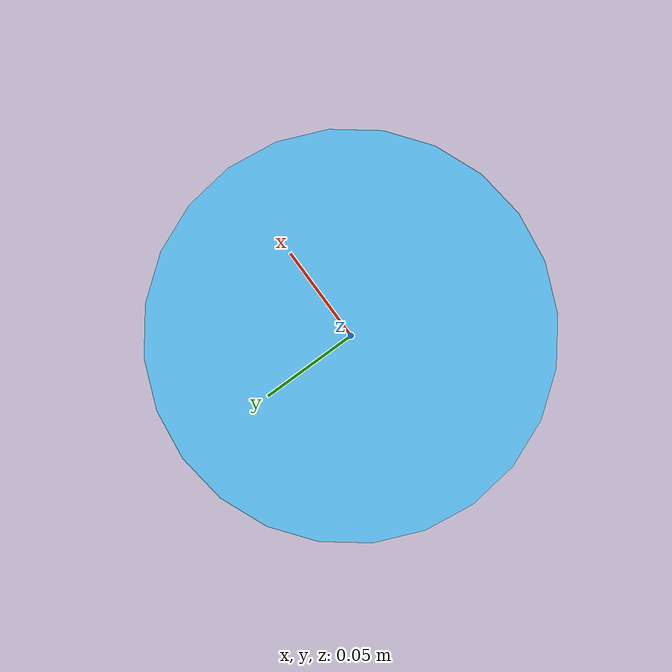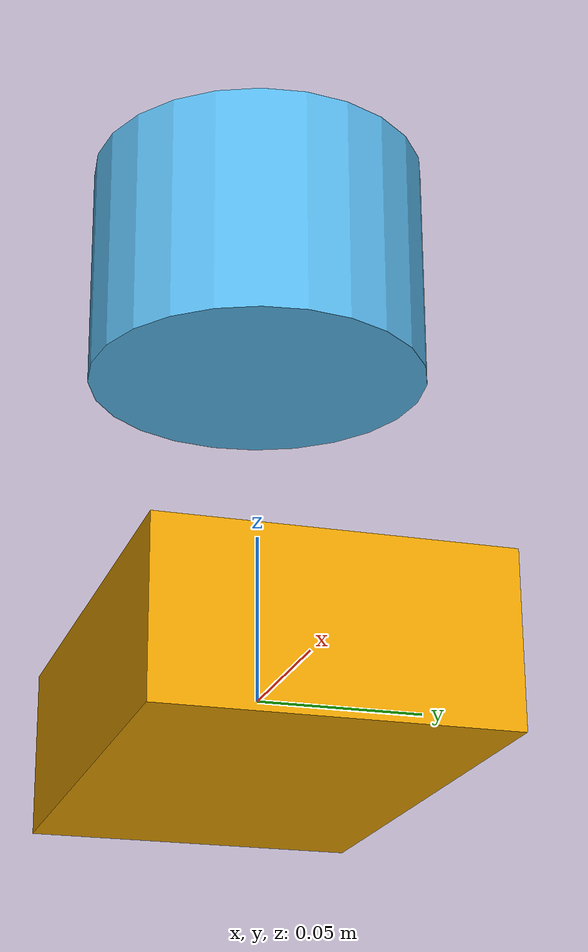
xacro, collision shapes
<?xml version="1.0"?>
<robot xmlns:xacro="http://www.ros.org/wiki/xacro" name="demo">
  <!-- define some parameters -->
  <xacro:arg name="gpu" default="false"/>
  <xacro:property name="gpu" value="$(arg gpu)" />

  <xacro:arg name="organize_cloud" default="false"/>
  <xacro:property name="organize_cloud" value="$(arg organize_cloud)" />

  <!-- Base Footprint -->

  <!-- Base Link -->
  <!-- link(or say an obejct) -->
  <link name="base_link" >
    <pose xyz="0 0 0.5" rpy="0 0 0" />
    <visual>
      <geometry>
        <box size="0.15 0.1 0.05" />
      </geometry>
    </visual>
    <collision>
      <geometry>
        <box size="0.15 0.1 0.05" />
      </geometry>
    </collision>
    <inertial>
      <origin xyz="0 0 0"/>
      <mass value="10"/>
      <inertia ixx="3.0" ixy="0.0" ixz="0.0"
               iyy="3.0" iyz="0.0"
               izz="3.0" />
    </inertial>
    <gazebo reference="base_footprint">
    <gravity>0</gravity>
    </gazebo>
    <selfCollide>false</selfCollide>
  </link>

  <gazebo reference="base_footprint">
    <turnGravityOff>true</turnGravityOff>
  </gazebo>
  <!-- plugin, a model plugin as it is on a robot model -->
  <gazebo>
    <plugin name="car_steer_plugin" filename="libcar_steer_plugin.so"/>
  </gazebo>

  <!-- a way to add another model in current model -->
  <xacro:include filename="$(find virtual_dataset)/urdf/Ouster-64.urdf.xacro"/>
  <xacro:Ouster-64 parent="base_link" name="ouster" topic="/ouster_points" organize_cloud="${organize_cloud}" hz="10" samples="2048" gpu="${gpu}">
    <origin xyz="0 0 0.1" rpy="0 0 0" />
  </xacro:Ouster-64>

</robot>

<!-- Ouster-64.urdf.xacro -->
<robot xmlns:xacro="http://www.ros.org/wiki/xacro" name="Ouster-64">
  <xacro:property name="M_PI" value="3.1415926535897931" />
  <xacro:macro name="Ouster-64" params="*origin parent:=base_link name:=ouster topic:=/ouster_points topic_imu:=/ouster_imu organize_cloud:=false hz:=10 lasers:=64 samples:=2048 collision_range:=0.3 min_range:=0.9 max_range:=75.0 noise:=0.008 min_angle:=-${M_PI} max_angle:=${M_PI} gpu:=false">

    <joint name="${name}_base_mount_joint" type="fixed">
      <xacro:insert_block name="origin" />
      <parent link="${parent}"/>
      <child link="${name}_base_link"/>
    </joint>

    <link name="${name}_base_link">
      <inertial>
        <mass value="0.83"/>
        <origin xyz="0 0 0.03585"/>
        <inertia ixx="${(0.83 * (3.0*0.0516*0.0516 + 0.0717*0.0717)) / 12.0}" ixy="0" ixz="0"
          iyy="${(0.83 * (3.0*0.0516*0.0516 + 0.0717*0.0717)) / 12.0}" iyz="0"
          izz="${0.5 * 0.83 * (0.0516*0.0516)}"/>
      </inertial>
      <visual>
        <geometry>
          <mesh filename="package://virtual_dataset/meshes/Ouster64_base_1.dae" />
        </geometry>
      </visual>
      <visual>
        <geometry>
          <mesh filename="package://virtual_dataset/meshes/Ouster64_base_2.dae" />
        </geometry>
      </visual>
      <collision>
        <origin rpy="0 0 0" xyz="0 0 0.03585"/>
        <geometry>
          <cylinder radius="0.0516" length="0.0717"/>
        </geometry>
      </collision>
      <selfCollide>false</selfCollide>
    </link>

    <joint name="${name}_base_scan_joint" type="fixed" >
      <origin xyz="0 0 0.0377" rpy="0 0 0" />
      <parent link="${name}_base_link" />
      <child link="${name}"/>
    </joint>

    <link name="${name}">
      <inertial>
        <mass value="0.01"/>
        <origin xyz="0 0 0"/>
        <inertia ixx="1e-7" ixy="0" ixz="0" iyy="1e-7" iyz="0" izz="1e-7"/>
      </inertial>
      <visual>
        <origin xyz="0 0 -0.0377" />
        <geometry>
          <mesh filename="package://virtual_dataset/meshes/Ouster64_scan.dae" />
        </geometry>
      </visual>
      <collision>
        <geometry>
          <sphere radius="0"/>
        </geometry>
      </collision>
      <selfCollide>false</selfCollide>
    </link>

    <!-- Gazebo requires the ouster_gazebo_plugins package -->
    <gazebo reference="${name}">
      <xacro:if value="${gpu}">
        <sensor type="gpu_ray" name="${name}-Ouster64">
          <pose>0 0 0 0 0 0</pose>
          <visualize>false</visualize>
          <update_rate>${hz}</update_rate>
          <ray>
            <scan>
              <horizontal>
                <samples>${samples}</samples>
                <resolution>1</resolution>
                <min_angle>${min_angle}</min_angle>
                <max_angle>${max_angle}</max_angle>
              </horizontal>
              <vertical>
                <samples>${lasers}</samples>
                <resolution>1</resolution>
                <min_angle>-${22.5*M_PI/180.0}</min_angle>
                <max_angle> ${22.5*M_PI/180.0}</max_angle>
              </vertical>
            </scan>
            <range>
              <min>${collision_range}</min>
              <max>${max_range+1}</max>
              <resolution>0.001</resolution>
            </range>
            <noise>
              <type>gaussian</type>
              <mean>0.0</mean>
              <stddev>0.0</stddev>
            </noise>
          </ray>
          <plugin name="gazebo_ros_laser_controller" filename="libgazebo_ros_ouster_gpu_laser.so">
            <topicName>${topic}</topicName>
            <frameName>temp</frameName>
            <organize_cloud>${organize_cloud}</organize_cloud>
            <min_range>${min_range}</min_range>
            <max_range>${max_range}</max_range>
            <gaussianNoise>${noise}</gaussianNoise>
          </plugin>
        </sensor>
      </xacro:if>
      <xacro:unless value="${gpu}">
        <sensor type="ray" name="${name}-Ouster64">
          <pose>0 0 0 0 0 0</pose>
          <visualize>false</visualize>
          <update_rate>${hz}</update_rate>
          <ray>
            <scan>
              <horizontal>
                <samples>${samples}</samples>
                <resolution>1</resolution>
                <min_angle>${min_angle}</min_angle>
                <max_angle>${max_angle}</max_angle>
              </horizontal>
              <vertical>
                <samples>${lasers}</samples>
                <resolution>1</resolution>
                <min_angle>-${22.5*M_PI/180.0}</min_angle>
                <max_angle> ${22.5*M_PI/180.0}</max_angle>
              </vertical>
            </scan>
            <range>
              <min>${collision_range}</min>
              <max>${max_range+1}</max>
              <resolution>0.001</resolution>
            </range>
            <noise>
              <type>gaussian</type>
              <mean>0.0</mean>
              <stddev>0.008</stddev>
            </noise>
          </ray>
          <plugin name="gazebo_ros_laser_controller" filename="libgazebo_ros_ouster_laser.so">
            <topicName>${topic}</topicName>
            <frameName>temp</frameName>
            <organize_cloud>${organize_cloud}</organize_cloud>
            <min_range>${min_range}</min_range>
            <max_range>${max_range}</max_range>
            <gaussianNoise>${noise}</gaussianNoise>
          </plugin>
        </sensor>
      </xacro:unless>
    </gazebo>

  <gazebo reference="${name}_base_link">
      <gravity>true</gravity>
      <sensor name="imu_sensor" type="imu">
          <always_on>true</always_on>
          <update_rate>200</update_rate>
          <visualize>false</visualize>
          <topic>${topic_imu}</topic>
          <plugin filename="libimu9dof.so" name="imu_plugin">
              <topicName>${topic_imu}</topicName>
              <bodyName>${name}_base_link</bodyName>
              <updateRateHZ>200.0</updateRateHZ>
              <gaussianNoise>0.005</gaussianNoise>
              <NoiseDensityAccel>3.9939570888238808e-03</NoiseDensityAccel>
              <NoiseDensityGyro>1.5636343949698187e-03</NoiseDensityGyro>
              <RandomWalkAccel>6.4356659353532566e-05</RandomWalkAccel>
              <RandomWalkGyro>3.5640318696367613e-05</RandomWalkGyro>
              <xyzOffset>0 0 0</xyzOffset>
              <rpyOffset>0 0 0</rpyOffset>
              <frameName>temp</frameName>
              <initialOrientationAsReference>false</initialOrientationAsReference>
          </plugin>
          <pose>0 0 0 0 0 0</pose>
      </sensor>
  </gazebo>

  </xacro:macro>
</robot>
